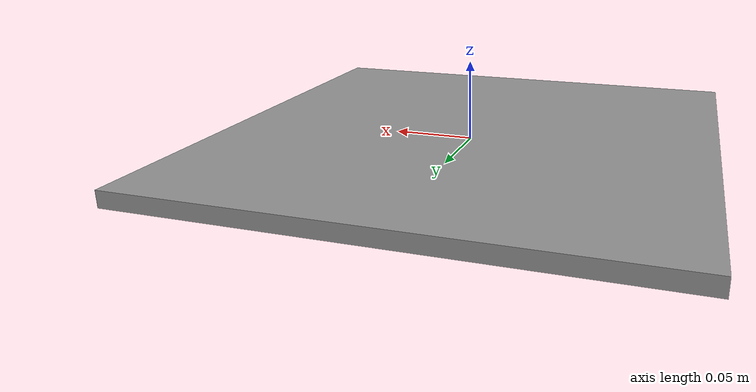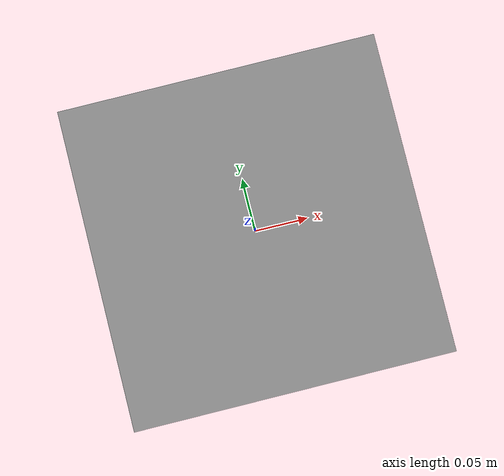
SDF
<?xml version='1.0'?>
<sdf version='1.7'>
  <model name='starting_rect'>
    <link name='link_0'>
      <inertial>
        <mass>1</mass>
        <inertia>
          <ixx>0.166667</ixx>
          <ixy>0</ixy>
          <ixz>0</ixz>
          <iyy>0.166667</iyy>
          <iyz>0</iyz>
          <izz>0.166667</izz>
        </inertia>
        <pose>0 0 0 0 -0 0</pose>
      </inertial>
      <pose>0 0 0 0 -0 0</pose>
      <gravity>1</gravity>
      <self_collide>0</self_collide>
      <kinematic>0</kinematic>
      <enable_wind>0</enable_wind>
      <visual name='visual'>
        <pose>0 0 0 0 -0 0</pose>
        <geometry>
          <box>
            <size>0.3048 0.3048 0.01</size>
          </box>
        </geometry>
        <material>
          <lighting>1</lighting>
          <script>
            <uri>file://media/materials/scripts/gazebo.material</uri>
            <name>Gazebo/Grey</name>
          </script>
          <shader type='pixel'>
            <normal_map>__default__</normal_map>
          </shader>
          <ambient>0.933 0.933 0.925 1</ambient>
          <diffuse>0.933 0.933 0.925 1</diffuse>
          <specular>0.933 0.933 0.925 1</specular>
          <emissive>0.933 0.933 0.925 1</emissive>
        </material>
        <transparency>0</transparency>
        <cast_shadows>1</cast_shadows>
      </visual>
    </link>
    <static>0</static>
    <allow_auto_disable>1</allow_auto_disable>
  </model>
</sdf>
